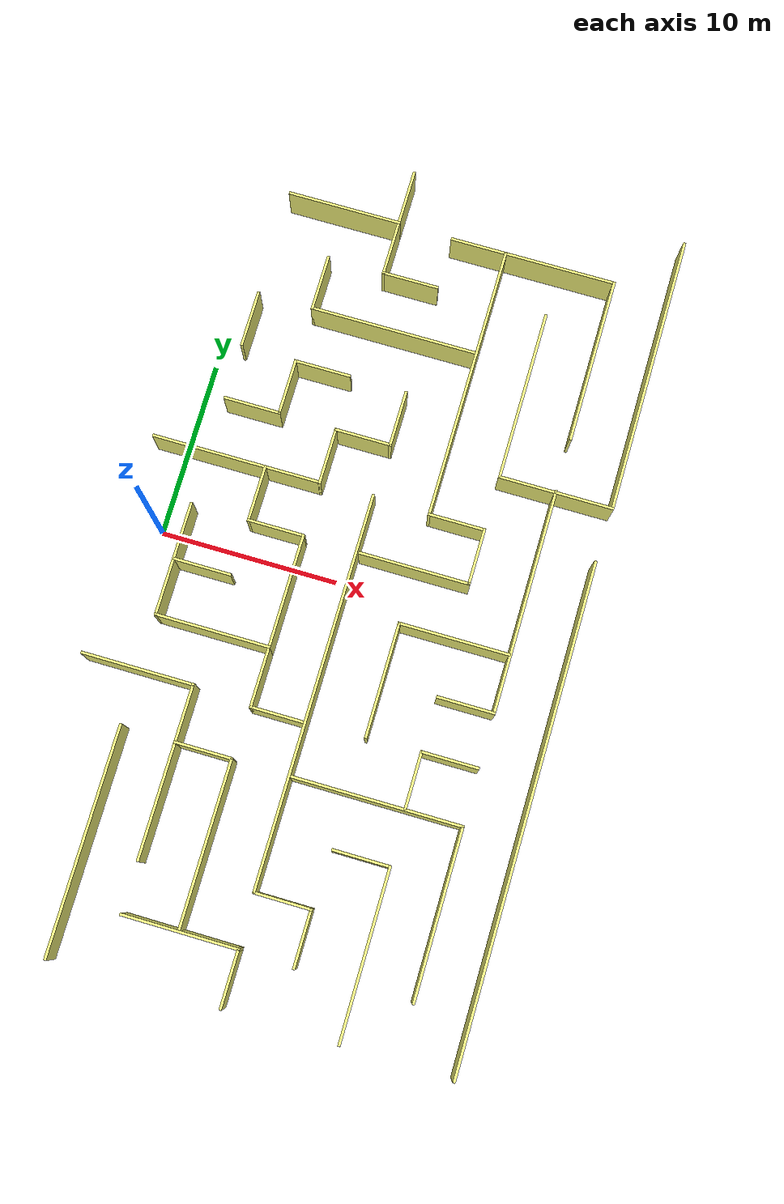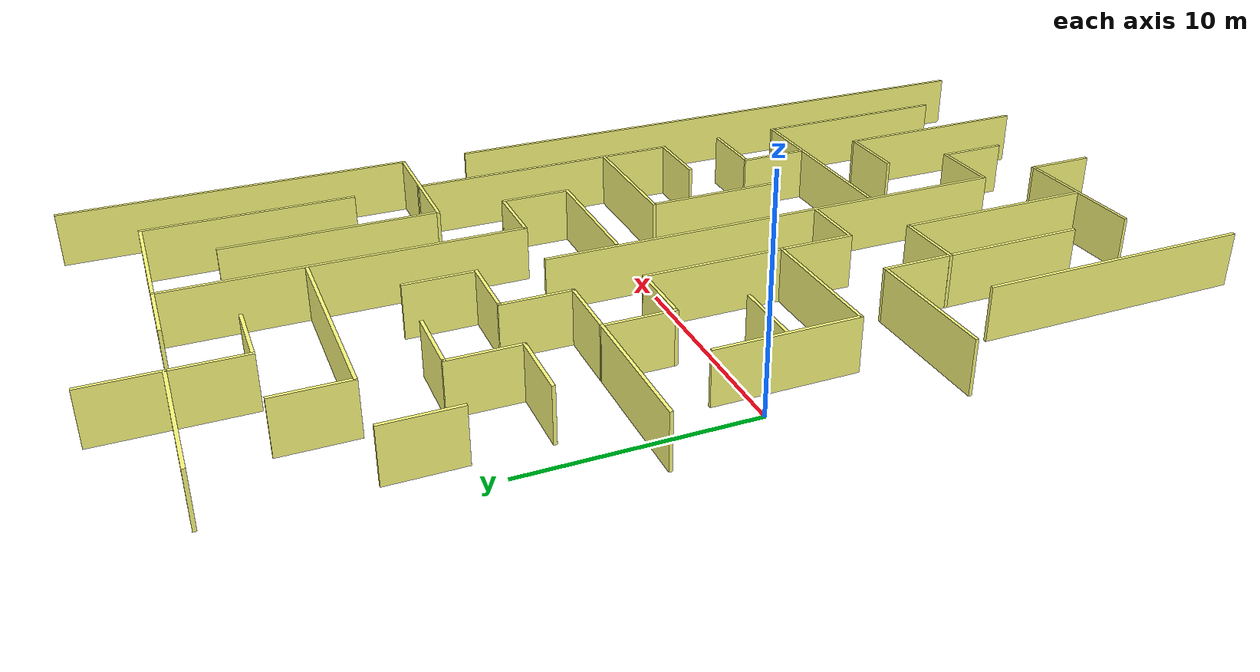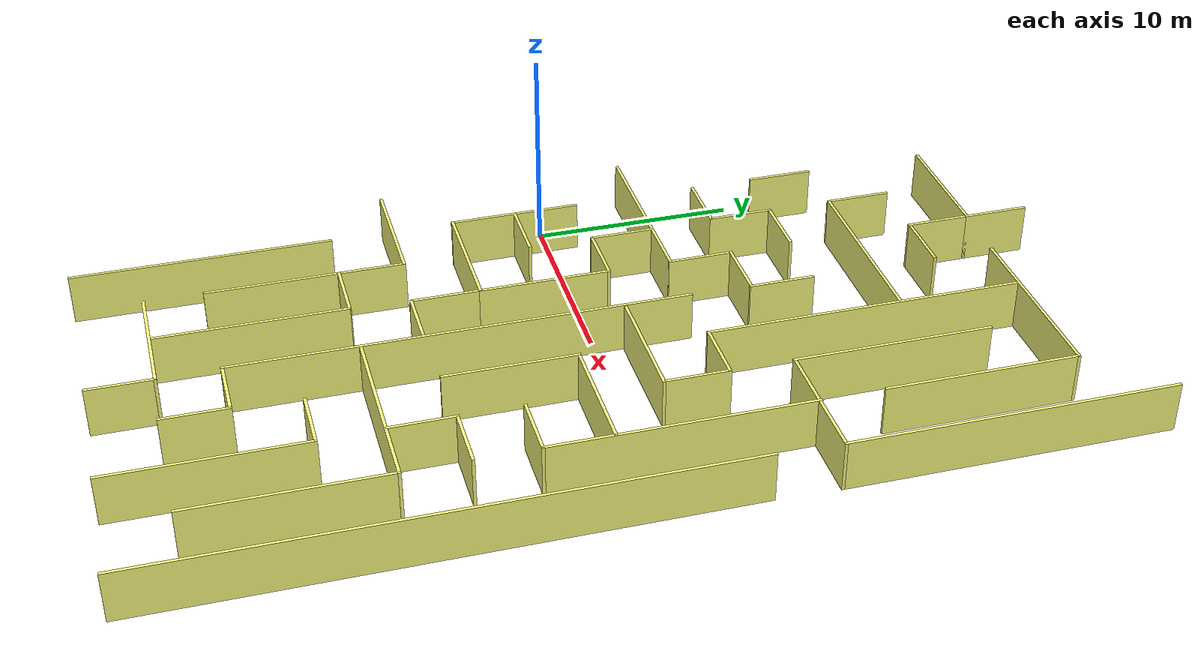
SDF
<sdf version="1.6">
 <world name="default">
  <model name="Maze3">
   <pose>-0.233521 -0.994132 0 0 -0 0</pose>
   <link name="Wall_11">
    <collision name="Wall_11_Collision">
     <geometry><box><size>16 0.15 2.5</size></box></geometry>
     <pose>0 0 1.25 0 -0 0</pose>
    </collision>
    <visual name="Wall_11_Visual">
     <pose>0 0 1.25 0 -0 0</pose>
     <geometry><box><size>16 0.15 2.5</size></box></geometry>
     <material>
      <script><uri>file://media/materials/scripts/gazebo.material</uri><name>Gazebo/Grey</name></script>
      <ambient>1 1 0.5 1</ambient>
     </material>
     <meta><layer>1</layer></meta>
    </visual>
    <pose>23.686 16.5704 0.001 0 -0 -1.5708</pose>
   </link>
   <link name="Wall_119">
    <collision name="Wall_119_Collision">
     <geometry><box><size>6.33818 0.15 2.5</size></box></geometry>
     <pose>0 0 1.25 0 -0 0</pose>
    </collision>
    <visual name="Wall_119_Visual">
     <pose>0 0 1.25 0 -0 0</pose>
     <geometry><box><size>6.33818 0.15 2.5</size></box></geometry>
     <material>
      <script><uri>file://media/materials/scripts/gazebo.material</uri><name>Gazebo/Grey</name></script>
      <ambient>1 1 0.5 1</ambient>
     </material>
     <meta><layer>1</layer></meta>
    </visual>
    <pose>1.63703 -6.89503 0.001 0 -0 0</pose>
   </link>
   <link name="Wall_12">
    <collision name="Wall_12_Collision">
     <geometry><box><size>6.5 0.15 2.5</size></box></geometry>
     <pose>0 0 1.25 0 -0 0</pose>
    </collision>
    <visual name="Wall_12_Visual">
     <pose>0 0 1.25 0 -0 0</pose>
     <geometry><box><size>6.5 0.15 2.5</size></box></geometry>
     <material>
      <script><uri>file://media/materials/scripts/gazebo.material</uri><name>Gazebo/Grey</name></script>
      <ambient>1 1 0.5 1</ambient>
     </material>
     <meta><layer>1</layer></meta>
    </visual>
    <pose>20.511 8.64537 0.001 0 -0 3.14159</pose>
   </link>
   <link name="Wall_120">
    <collision name="Wall_120_Collision">
     <geometry><box><size>9.75 0.15 2.5</size></box></geometry>
     <pose>0 0 1.25 0 -0 0</pose>
    </collision>
    <visual name="Wall_120_Visual">
     <pose>0 0 1.25 0 -0 0</pose>
     <geometry><box><size>9.75 0.15 2.5</size></box></geometry>
     <material>
      <script><uri>file://media/materials/scripts/gazebo.material</uri><name>Gazebo/Grey</name></script>
      <ambient>1 1 0.5 1</ambient>
     </material>
     <meta><layer>1</layer></meta>
    </visual>
    <pose>4.73112 -11.695 0.001 0 -0 -1.5708</pose>
   </link>
   <link name="Wall_13">
    <collision name="Wall_13_Collision">
     <geometry><box><size>9.75 0.15 2.5</size></box></geometry>
     <pose>0 0 1.25 0 -0 0</pose>
    </collision>
    <visual name="Wall_13_Visual">
     <pose>0 0 1.25 0 -0 0</pose>
     <geometry><box><size>9.75 0.15 2.5</size></box></geometry>
     <material>
      <script><uri>file://media/materials/scripts/gazebo.material</uri><name>Gazebo/Grey</name></script>
      <ambient>1 1 0.5 1</ambient>
     </material>
     <meta><layer>1</layer></meta>
    </visual>
    <pose>17.336 13.4454 0.001 0 -0 1.5708</pose>
   </link>
   <link name="Wall_131">
    <collision name="Wall_131_Collision">
     <geometry><box><size>12.75 0.15 2.5</size></box></geometry>
     <pose>0 0 1.25 0 -0 0</pose>
    </collision>
    <visual name="Wall_131_Visual">
     <pose>0 0 1.25 0 -0 0</pose>
     <geometry><box><size>12.75 0.15 2.5</size></box></geometry>
     <material>
      <script><uri>file://media/materials/scripts/gazebo.material</uri><name>Gazebo/Grey</name></script>
      <ambient>1 1 0.5 1</ambient>
     </material>
     <meta><layer>1</layer></meta>
    </visual>
    <pose>1.6821 -16.3109 0.001 0 -0 1.5708</pose>
   </link>
   <link name="Wall_143">
    <collision name="Wall_143_Collision">
     <geometry><box><size>6.5 0.15 2.5</size></box></geometry>
     <pose>0 0 1.25 0 -0 0</pose>
    </collision>
    <visual name="Wall_143_Visual">
     <pose>0 0 1.25 0 -0 0</pose>
     <geometry><box><size>6.5 0.15 2.5</size></box></geometry>
     <material>
      <script><uri>file://media/materials/scripts/gazebo.material</uri><name>Gazebo/Grey</name></script>
      <ambient>1 1 0.5 1</ambient>
     </material>
     <meta><layer>1</layer></meta>
    </visual>
    <pose>1.66366 -0.653784 0.001 0 -0 -1.5708</pose>
   </link>
   <link name="Wall_144">
    <collision name="Wall_144_Collision">
     <geometry><box><size>6.5 0.15 2.5</size></box></geometry>
     <pose>0 0 1.25 0 -0 0</pose>
    </collision>
    <visual name="Wall_144_Visual">
     <pose>0 0 1.25 0 -0 0</pose>
     <geometry><box><size>6.5 0.15 2.5</size></box></geometry>
     <material>
      <script><uri>file://media/materials/scripts/gazebo.material</uri><name>Gazebo/Grey</name></script>
      <ambient>1 1 0.5 1</ambient>
     </material>
     <meta><layer>1</layer></meta>
    </visual>
    <pose>4.83866 -3.82878 0.001 0 -0 0</pose>
   </link>
   <link name="Wall_145">
    <collision name="Wall_145_Collision">
     <geometry><box><size>6.5 0.15 2.5</size></box></geometry>
     <pose>0 0 1.25 0 -0 0</pose>
    </collision>
    <visual name="Wall_145_Visual">
     <pose>0 0 1.25 0 -0 0</pose>
     <geometry><box><size>6.5 0.15 2.5</size></box></geometry>
     <material>
      <script><uri>file://media/materials/scripts/gazebo.material</uri><name>Gazebo/Grey</name></script>
      <ambient>1 1 0.5 1</ambient>
     </material>
     <meta><layer>1</layer></meta>
    </visual>
    <pose>8.01366 -0.653784 0.001 0 -0 1.5708</pose>
   </link>
   <link name="Wall_146">
    <collision name="Wall_146_Collision">
     <geometry><box><size>3.25 0.15 2.5</size></box></geometry>
     <pose>0 0 1.25 0 -0 0</pose>
    </collision>
    <visual name="Wall_146_Visual">
     <pose>0 0 1.25 0 -0 0</pose>
     <geometry><box><size>3.25 0.15 2.5</size></box></geometry>
     <material>
      <script><uri>file://media/materials/scripts/gazebo.material</uri><name>Gazebo/Grey</name></script>
      <ambient>1 1 0.5 1</ambient>
     </material>
     <meta><layer>1</layer></meta>
    </visual>
    <pose>6.46366 2.52122 0.001 0 -0 3.14159</pose>
   </link>
   <link name="Wall_147">
    <collision name="Wall_147_Collision">
     <geometry><box><size>3.25 0.15 2.5</size></box></geometry>
     <pose>0 0 1.25 0 -0 0</pose>
    </collision>
    <visual name="Wall_147_Visual">
     <pose>0 0 1.25 0 -0 0</pose>
     <geometry><box><size>3.25 0.15 2.5</size></box></geometry>
     <material>
      <script><uri>file://media/materials/scripts/gazebo.material</uri><name>Gazebo/Grey</name></script>
      <ambient>1 1 0.5 1</ambient>
     </material>
     <meta><layer>1</layer></meta>
    </visual>
    <pose>4.91366 4.07122 0.001 0 -0 1.5708</pose>
   </link>
   <link name="Wall_148">
    <collision name="Wall_148_Collision">
     <geometry><box><size>6.5 0.15 2.5</size></box></geometry>
     <pose>0 0 1.25 0 -0 0</pose>
    </collision>
    <visual name="Wall_148_Visual">
     <pose>0 0 1.25 0 -0 0</pose>
     <geometry><box><size>6.5 0.15 2.5</size></box></geometry>
     <material>
      <script><uri>file://media/materials/scripts/gazebo.material</uri><name>Gazebo/Grey</name></script>
      <ambient>1 1 0.5 1</ambient>
     </material>
     <meta><layer>1</layer></meta>
    </visual>
    <pose>1.73866 5.62122 0.001 0 -0 3.14159</pose>
   </link>
   <link name="Wall_15">
    <collision name="Wall_15_Collision">
     <geometry><box><size>9.5 0.15 2.5</size></box></geometry>
     <pose>0 0 1.25 0 -0 0</pose>
    </collision>
    <visual name="Wall_15_Visual">
     <pose>0 0 1.25 0 -0 0</pose>
     <geometry><box><size>9.5 0.15 2.5</size></box></geometry>
     <material>
      <script><uri>file://media/materials/scripts/gazebo.material</uri><name>Gazebo/Grey</name></script>
      <ambient>1 1 0.5 1</ambient>
     </material>
     <meta><layer>1</layer></meta>
    </visual>
    <pose>20.4894 16.4908 0.001 0 -0 1.5708</pose>
   </link>
   <link name="Wall_150">
    <collision name="Wall_150_Collision">
     <geometry><box><size>3.25 0.15 2.5</size></box></geometry>
     <pose>0 0 1.25 0 -0 0</pose>
    </collision>
    <visual name="Wall_150_Visual">
     <pose>0 0 1.25 0 -0 0</pose>
     <geometry><box><size>3.25 0.15 2.5</size></box></geometry>
     <material>
      <script><uri>file://media/materials/scripts/gazebo.material</uri><name>Gazebo/Grey</name></script>
      <ambient>1 1 0.5 1</ambient>
     </material>
     <meta><layer>1</layer></meta>
    </visual>
    <pose>6.46366 5.62122 0.001 0 -0 0</pose>
   </link>
   <link name="Wall_151">
    <collision name="Wall_151_Collision">
     <geometry><box><size>3.25 0.15 2.5</size></box></geometry>
     <pose>0 0 1.25 0 -0 0</pose>
    </collision>
    <visual name="Wall_151_Visual">
     <pose>0 0 1.25 0 -0 0</pose>
     <geometry><box><size>3.25 0.15 2.5</size></box></geometry>
     <material>
      <script><uri>file://media/materials/scripts/gazebo.material</uri><name>Gazebo/Grey</name></script>
      <ambient>1 1 0.5 1</ambient>
     </material>
     <meta><layer>1</layer></meta>
    </visual>
    <pose>8.01366 7.17122 0.001 0 -0 1.5708</pose>
   </link>
   <link name="Wall_152">
    <collision name="Wall_152_Collision">
     <geometry><box><size>3.25 0.15 2.5</size></box></geometry>
     <pose>0 0 1.25 0 -0 0</pose>
    </collision>
    <visual name="Wall_152_Visual">
     <pose>0 0 1.25 0 -0 0</pose>
     <geometry><box><size>3.25 0.15 2.5</size></box></geometry>
     <material>
      <script><uri>file://media/materials/scripts/gazebo.material</uri><name>Gazebo/Grey</name></script>
      <ambient>1 1 0.5 1</ambient>
     </material>
     <meta><layer>1</layer></meta>
    </visual>
    <pose>9.56366 8.72122 0.001 0 -0 0</pose>
   </link>
   <link name="Wall_153">
    <collision name="Wall_153_Collision">
     <geometry><box><size>3.25 0.15 2.5</size></box></geometry>
     <pose>0 0 1.25 0 -0 0</pose>
    </collision>
    <visual name="Wall_153_Visual">
     <pose>0 0 1.25 0 -0 0</pose>
     <geometry><box><size>3.25 0.15 2.5</size></box></geometry>
     <material>
      <script><uri>file://media/materials/scripts/gazebo.material</uri><name>Gazebo/Grey</name></script>
      <ambient>1 1 0.5 1</ambient>
     </material>
     <meta><layer>1</layer></meta>
    </visual>
    <pose>11.1137 10.2712 0.001 0 -0 1.5708</pose>
   </link>
   <link name="Wall_157">
    <collision name="Wall_157_Collision">
     <geometry><box><size>3.25 0.15 2.5</size></box></geometry>
     <pose>0 0 1.25 0 -0 0</pose>
    </collision>
    <visual name="Wall_157_Visual">
     <pose>0 0 1.25 0 -0 0</pose>
     <geometry><box><size>3.25 0.15 2.5</size></box></geometry>
     <material>
      <script><uri>file://media/materials/scripts/gazebo.material</uri><name>Gazebo/Grey</name></script>
      <ambient>1 1 0.5 1</ambient>
     </material>
     <meta><layer>1</layer></meta>
    </visual>
    <pose>3.21366 8.76629 0.001 0 -0 0</pose>
   </link>
   <link name="Wall_158">
    <collision name="Wall_158_Collision">
     <geometry><box><size>3.25 0.15 2.5</size></box></geometry>
     <pose>0 0 1.25 0 -0 0</pose>
    </collision>
    <visual name="Wall_158_Visual">
     <pose>0 0 1.25 0 -0 0</pose>
     <geometry><box><size>3.25 0.15 2.5</size></box></geometry>
     <material>
      <script><uri>file://media/materials/scripts/gazebo.material</uri><name>Gazebo/Grey</name></script>
      <ambient>1 1 0.5 1</ambient>
     </material>
     <meta><layer>1</layer></meta>
    </visual>
    <pose>4.76366 10.3163 0.001 0 -0 1.5708</pose>
   </link>
   <link name="Wall_159">
    <collision name="Wall_159_Collision">
     <geometry><box><size>3.25 0.15 2.5</size></box></geometry>
     <pose>0 0 1.25 0 -0 0</pose>
    </collision>
    <visual name="Wall_159_Visual">
     <pose>0 0 1.25 0 -0 0</pose>
     <geometry><box><size>3.25 0.15 2.5</size></box></geometry>
     <material>
      <script><uri>file://media/materials/scripts/gazebo.material</uri><name>Gazebo/Grey</name></script>
      <ambient>1 1 0.5 1</ambient>
     </material>
     <meta><layer>1</layer></meta>
    </visual>
    <pose>6.31366 11.8663 0.001 0 -0 0</pose>
   </link>
   <link name="Wall_16">
    <collision name="Wall_16_Collision">
     <geometry><box><size>9.5 0.15 2.5</size></box></geometry>
     <pose>0 0 1.25 0 -0 0</pose>
    </collision>
    <visual name="Wall_16_Visual">
     <pose>0 0 1.25 0 -0 0</pose>
     <geometry><box><size>9.5 0.15 2.5</size></box></geometry>
     <material>
      <script><uri>file://media/materials/scripts/gazebo.material</uri><name>Gazebo/Grey</name></script>
      <ambient>1 1 0.5 1</ambient>
     </material>
     <meta><layer>1</layer></meta>
    </visual>
    <pose>15.8144 21.1658 0.001 0 -0 3.14159</pose>
   </link>
   <link name="Wall_161">
    <collision name="Wall_161_Collision">
     <geometry><box><size>3.25 0.15 2.5</size></box></geometry>
     <pose>0 0 1.25 0 -0 0</pose>
    </collision>
    <visual name="Wall_161_Visual">
     <pose>0 0 1.25 0 -0 0</pose>
     <geometry><box><size>3.25 0.15 2.5</size></box></geometry>
     <material>
      <script><uri>file://media/materials/scripts/gazebo.material</uri><name>Gazebo/Grey</name></script>
      <ambient>1 1 0.5 1</ambient>
     </material>
     <meta><layer>1</layer></meta>
    </visual>
    <pose>1.63586 13.5254 0.001 0 -0 1.5708</pose>
   </link>
   <link name="Wall_165">
    <collision name="Wall_165_Collision">
     <geometry><box><size>3.25 0.15 2.5</size></box></geometry>
     <pose>0 0 1.25 0 -0 0</pose>
    </collision>
    <visual name="Wall_165_Visual">
     <pose>0 0 1.25 0 -0 0</pose>
     <geometry><box><size>3.25 0.15 2.5</size></box></geometry>
     <material>
      <script><uri>file://media/materials/scripts/gazebo.material</uri><name>Gazebo/Grey</name></script>
      <ambient>1 1 0.5 1</ambient>
     </material>
     <meta><layer>1</layer></meta>
    </visual>
    <pose>3.2864 -0.644379 0.001 0 -0 0</pose>
   </link>
   <link name="Wall_167">
    <collision name="Wall_167_Collision">
     <geometry><box><size>3.5 0.15 2.5</size></box></geometry>
     <pose>0 0 1.25 0 -0 0</pose>
    </collision>
    <visual name="Wall_167_Visual">
     <pose>0 0 1.25 0 -0 0</pose>
     <geometry><box><size>3.5 0.15 2.5</size></box></geometry>
     <material>
      <script><uri>file://media/materials/scripts/gazebo.material</uri><name>Gazebo/Grey</name></script>
      <ambient>1 1 0.5 1</ambient>
     </material>
     <meta><layer>1</layer></meta>
    </visual>
    <pose>8.01366 -5.50378 0.001 0 -0 -1.5708</pose>
   </link>
   <link name="Wall_168">
    <collision name="Wall_168_Collision">
     <geometry><box><size>3 0.15 2.5</size></box></geometry>
     <pose>0 0 1.25 0 -0 0</pose>
    </collision>
    <visual name="Wall_168_Visual">
     <pose>0 0 1.25 0 -0 0</pose>
     <geometry><box><size>3 0.15 2.5</size></box></geometry>
     <material>
      <script><uri>file://media/materials/scripts/gazebo.material</uri><name>Gazebo/Grey</name></script>
      <ambient>1 1 0.5 1</ambient>
     </material>
     <meta><layer>1</layer></meta>
    </visual>
    <pose>9.43866 -7.17878 0.001 0 -0 0</pose>
   </link>
   <link name="Wall_170">
    <collision name="Wall_170_Collision">
     <geometry><box><size>3.25 0.15 2.5</size></box></geometry>
     <pose>0 0 1.25 0 -0 0</pose>
    </collision>
    <visual name="Wall_170_Visual">
     <pose>0 0 1.25 0 -0 0</pose>
     <geometry><box><size>3.25 0.15 2.5</size></box></geometry>
     <material>
      <script><uri>file://media/materials/scripts/gazebo.material</uri><name>Gazebo/Grey</name></script>
      <ambient>1 1 0.5 1</ambient>
     </material>
     <meta><layer>1</layer></meta>
    </visual>
    <pose>6.27338 -10.0795 0.001 0 -0 0</pose>
   </link>
   <link name="Wall_172">
    <collision name="Wall_172_Collision">
     <geometry><box><size>9.25 0.15 2.5</size></box></geometry>
     <pose>0 0 1.25 0 -0 0</pose>
    </collision>
    <visual name="Wall_172_Visual">
     <pose>0 0 1.25 0 -0 0</pose>
     <geometry><box><size>9.25 0.15 2.5</size></box></geometry>
     <material>
      <script><uri>file://media/materials/scripts/gazebo.material</uri><name>Gazebo/Grey</name></script>
      <ambient>1 1 0.5 1</ambient>
     </material>
     <meta><layer>1</layer></meta>
    </visual>
    <pose>7.85976 -14.6816 0.001 0 -0 1.5708</pose>
   </link>
   <link name="Wall_177">
    <collision name="Wall_177_Collision">
     <geometry><box><size>6.5 0.15 2.5</size></box></geometry>
     <pose>0 0 1.25 0 -0 0</pose>
    </collision>
    <visual name="Wall_177_Visual">
     <pose>0 0 1.25 0 -0 0</pose>
     <geometry><box><size>6.5 0.15 2.5</size></box></geometry>
     <material>
      <script><uri>file://media/materials/scripts/gazebo.material</uri><name>Gazebo/Grey</name></script>
      <ambient>1 1 0.5 1</ambient>
     </material>
     <meta><layer>1</layer></meta>
    </visual>
    <pose>4.81226 21.2679 0.001 0 -0 0</pose>
   </link>
   <link name="Wall_178">
    <collision name="Wall_178_Collision">
     <geometry><box><size>3.25 0.15 2.5</size></box></geometry>
     <pose>0 0 1.25 0 -0 0</pose>
    </collision>
    <visual name="Wall_178_Visual">
     <pose>0 0 1.25 0 -0 0</pose>
     <geometry><box><size>3.25 0.15 2.5</size></box></geometry>
     <material>
      <script><uri>file://media/materials/scripts/gazebo.material</uri><name>Gazebo/Grey</name></script>
      <ambient>1 1 0.5 1</ambient>
     </material>
     <meta><layer>1</layer></meta>
    </visual>
    <pose>7.98726 22.8179 0.001 0 -0 1.5708</pose>
   </link>
   <link name="Wall_18">
    <collision name="Wall_18_Collision">
     <geometry><box><size>15.75 0.15 2.5</size></box></geometry>
     <pose>0 0 1.25 0 -0 0</pose>
    </collision>
    <visual name="Wall_18_Visual">
     <pose>0 0 1.25 0 -0 0</pose>
     <geometry><box><size>15.75 0.15 2.5</size></box></geometry>
     <material>
      <script><uri>file://media/materials/scripts/gazebo.material</uri><name>Gazebo/Grey</name></script>
      <ambient>1 1 0.5 1</ambient>
     </material>
     <meta><layer>1</layer></meta>
    </visual>
    <pose>14.2274 13.3557 0.001 0 -0 -1.5708</pose>
   </link>
   <link name="Wall_180">
    <collision name="Wall_180_Collision">
     <geometry><box><size>3.25 0.15 2.5</size></box></geometry>
     <pose>0 0 1.25 0 -0 0</pose>
    </collision>
    <visual name="Wall_180_Visual">
     <pose>0 0 1.25 0 -0 0</pose>
     <geometry><box><size>3.25 0.15 2.5</size></box></geometry>
     <material>
      <script><uri>file://media/materials/scripts/gazebo.material</uri><name>Gazebo/Grey</name></script>
      <ambient>1 1 0.5 1</ambient>
     </material>
     <meta><layer>1</layer></meta>
    </visual>
    <pose>7.98726 19.7179 0.001 0 -0 -1.5708</pose>
   </link>
   <link name="Wall_181">
    <collision name="Wall_181_Collision">
     <geometry><box><size>3.25 0.15 2.5</size></box></geometry>
     <pose>0 0 1.25 0 -0 0</pose>
    </collision>
    <visual name="Wall_181_Visual">
     <pose>0 0 1.25 0 -0 0</pose>
     <geometry><box><size>3.25 0.15 2.5</size></box></geometry>
     <material>
      <script><uri>file://media/materials/scripts/gazebo.material</uri><name>Gazebo/Grey</name></script>
      <ambient>1 1 0.5 1</ambient>
     </material>
     <meta><layer>1</layer></meta>
    </visual>
    <pose>9.53726 18.1679 0.001 0 -0 0</pose>
   </link>
   <link name="Wall_19">
    <collision name="Wall_19_Collision">
     <geometry><box><size>3.25 0.15 2.5</size></box></geometry>
     <pose>0 0 1.25 0 -0 0</pose>
    </collision>
    <visual name="Wall_19_Visual">
     <pose>0 0 1.25 0 -0 0</pose>
     <geometry><box><size>3.25 0.15 2.5</size></box></geometry>
     <material>
      <script><uri>file://media/materials/scripts/gazebo.material</uri><name>Gazebo/Grey</name></script>
      <ambient>1 1 0.5 1</ambient>
     </material>
     <meta><layer>1</layer></meta>
    </visual>
    <pose>15.7774 5.55574 0.001 0 -0 0</pose>
   </link>
   <link name="Wall_20">
    <collision name="Wall_20_Collision">
     <geometry><box><size>3.25 0.15 2.5</size></box></geometry>
     <pose>0 0 1.25 0 -0 0</pose>
    </collision>
    <visual name="Wall_20_Visual">
     <pose>0 0 1.25 0 -0 0</pose>
     <geometry><box><size>3.25 0.15 2.5</size></box></geometry>
     <material>
      <script><uri>file://media/materials/scripts/gazebo.material</uri><name>Gazebo/Grey</name></script>
      <ambient>1 1 0.5 1</ambient>
     </material>
     <meta><layer>1</layer></meta>
    </visual>
    <pose>17.3274 4.00574 0.001 0 -0 -1.5708</pose>
   </link>
   <link name="Wall_21">
    <collision name="Wall_21_Collision">
     <geometry><box><size>6.25 0.15 2.5</size></box></geometry>
     <pose>0 0 1.25 0 -0 0</pose>
    </collision>
    <visual name="Wall_21_Visual">
     <pose>0 0 1.25 0 -0 0</pose>
     <geometry><box><size>6.25 0.15 2.5</size></box></geometry>
     <material>
      <script><uri>file://media/materials/scripts/gazebo.material</uri><name>Gazebo/Grey</name></script>
      <ambient>1 1 0.5 1</ambient>
     </material>
     <meta><layer>1</layer></meta>
    </visual>
    <pose>14.2774 2.45574 0.001 0 -0 3.14159</pose>
   </link>
   <link name="Wall_23">
    <collision name="Wall_23_Collision">
     <geometry><box><size>12.75 0.15 2.5</size></box></geometry>
     <pose>0 0 1.25 0 -0 0</pose>
    </collision>
    <visual name="Wall_23_Visual">
     <pose>0 0 1.25 0 -0 0</pose>
     <geometry><box><size>12.75 0.15 2.5</size></box></geometry>
     <material>
      <script><uri>file://media/materials/scripts/gazebo.material</uri><name>Gazebo/Grey</name></script>
      <ambient>1 1 0.5 1</ambient>
     </material>
     <meta><layer>1</layer></meta>
    </visual>
    <pose>20.4935 2.3978 0.001 0 -0 -1.5708</pose>
   </link>
   <link name="Wall_24">
    <collision name="Wall_24_Collision">
     <geometry><box><size>3.25 0.15 2.5</size></box></geometry>
     <pose>0 0 1.25 0 -0 0</pose>
    </collision>
    <visual name="Wall_24_Visual">
     <pose>0 0 1.25 0 -0 0</pose>
     <geometry><box><size>3.25 0.15 2.5</size></box></geometry>
     <material>
      <script><uri>file://media/materials/scripts/gazebo.material</uri><name>Gazebo/Grey</name></script>
      <ambient>1 1 0.5 1</ambient>
     </material>
     <meta><layer>1</layer></meta>
    </visual>
    <pose>18.9435 -3.9022 0.001 0 -0 3.14159</pose>
   </link>
   <link name="Wall_27">
    <collision name="Wall_27_Collision">
     <geometry><box><size>6.25 0.15 2.5</size></box></geometry>
     <pose>0 0 1.25 0 -0 0</pose>
    </collision>
    <visual name="Wall_27_Visual">
     <pose>0 0 1.25 0 -0 0</pose>
     <geometry><box><size>6.25 0.15 2.5</size></box></geometry>
     <material>
      <script><uri>file://media/materials/scripts/gazebo.material</uri><name>Gazebo/Grey</name></script>
      <ambient>1 1 0.5 1</ambient>
     </material>
     <meta><layer>1</layer></meta>
    </visual>
    <pose>17.3753 -0.658048 0.001 0 -0 3.14159</pose>
   </link>
   <link name="Wall_28">
    <collision name="Wall_28_Collision">
     <geometry><box><size>6.5 0.15 2.5</size></box></geometry>
     <pose>0 0 1.25 0 -0 0</pose>
    </collision>
    <visual name="Wall_28_Visual">
     <pose>0 0 1.25 0 -0 0</pose>
     <geometry><box><size>6.5 0.15 2.5</size></box></geometry>
     <material>
      <script><uri>file://media/materials/scripts/gazebo.material</uri><name>Gazebo/Grey</name></script>
      <ambient>1 1 0.5 1</ambient>
     </material>
     <meta><layer>1</layer></meta>
    </visual>
    <pose>14.3253 -3.83305 0.001 0 -0 -1.5708</pose>
   </link>
   <link name="Wall_36">
    <collision name="Wall_36_Collision">
     <geometry><box><size>28.25 0.15 2.5</size></box></geometry>
     <pose>0 0 1.25 0 -0 0</pose>
    </collision>
    <visual name="Wall_36_Visual">
     <pose>0 0 1.25 0 -0 0</pose>
     <geometry><box><size>28.25 0.15 2.5</size></box></geometry>
     <material>
      <script><uri>file://media/materials/scripts/gazebo.material</uri><name>Gazebo/Grey</name></script>
      <ambient>1 1 0.5 1</ambient>
     </material>
     <meta><layer>1</layer></meta>
    </visual>
    <pose>23.5636 -8.54374 0.001 0 -0 1.5708</pose>
   </link>
   <link name="Wall_40">
    <collision name="Wall_40_Collision">
     <geometry><box><size>3.25 0.15 2.5</size></box></geometry>
     <pose>0 0 1.25 0 -0 0</pose>
    </collision>
    <visual name="Wall_40_Visual">
     <pose>0 0 1.25 0 -0 0</pose>
     <geometry><box><size>3.25 0.15 2.5</size></box></geometry>
     <material>
      <script><uri>file://media/materials/scripts/gazebo.material</uri><name>Gazebo/Grey</name></script>
      <ambient>1 1 0.5 1</ambient>
     </material>
     <meta><layer>1</layer></meta>
    </visual>
    <pose>15.8865 -13.1502 0.001 0 -0 0</pose>
   </link>
   <link name="Wall_41">
    <collision name="Wall_41_Collision">
     <geometry><box><size>9.5 0.15 2.5</size></box></geometry>
     <pose>0 0 1.25 0 -0 0</pose>
    </collision>
    <visual name="Wall_41_Visual">
     <pose>0 0 1.25 0 -0 0</pose>
     <geometry><box><size>9.5 0.15 2.5</size></box></geometry>
     <material>
      <script><uri>file://media/materials/scripts/gazebo.material</uri><name>Gazebo/Grey</name></script>
      <ambient>1 1 0.5 1</ambient>
     </material>
     <meta><layer>1</layer></meta>
    </visual>
    <pose>17.4365 -17.8252 0.001 0 -0 -1.5708</pose>
   </link>
   <link name="Wall_43">
    <collision name="Wall_43_Collision">
     <geometry><box><size>9.5 0.15 2.5</size></box></geometry>
     <pose>0 0 1.25 0 -0 0</pose>
    </collision>
    <visual name="Wall_43_Visual">
     <pose>0 0 1.25 0 -0 0</pose>
     <geometry><box><size>9.5 0.15 2.5</size></box></geometry>
     <material>
      <script><uri>file://media/materials/scripts/gazebo.material</uri><name>Gazebo/Grey</name></script>
      <ambient>1 1 0.5 1</ambient>
     </material>
     <meta><layer>1</layer></meta>
    </visual>
    <pose>20.5149 -14.7763 0.001 0 -0 1.5708</pose>
   </link>
   <link name="Wall_44">
    <collision name="Wall_44_Collision">
     <geometry><box><size>9.5 0.15 2.5</size></box></geometry>
     <pose>0 0 1.25 0 -0 0</pose>
    </collision>
    <visual name="Wall_44_Visual">
     <pose>0 0 1.25 0 -0 0</pose>
     <geometry><box><size>9.5 0.15 2.5</size></box></geometry>
     <material>
      <script><uri>file://media/materials/scripts/gazebo.material</uri><name>Gazebo/Grey</name></script>
      <ambient>1 1 0.5 1</ambient>
     </material>
     <meta><layer>1</layer></meta>
    </visual>
    <pose>15.8399 -10.1013 0.001 0 -0 3.14159</pose>
   </link>
   <link name="Wall_46">
    <collision name="Wall_46_Collision">
     <geometry><box><size>3.25 0.15 2.5</size></box></geometry>
     <pose>0 0 1.25 0 -0 0</pose>
    </collision>
    <visual name="Wall_46_Visual">
     <pose>0 0 1.25 0 -0 0</pose>
     <geometry><box><size>3.25 0.15 2.5</size></box></geometry>
     <material>
      <script><uri>file://media/materials/scripts/gazebo.material</uri><name>Gazebo/Grey</name></script>
      <ambient>1 1 0.5 1</ambient>
     </material>
     <meta><layer>1</layer></meta>
    </visual>
    <pose>17.3643 -8.49052 0.001 0 -0 1.5708</pose>
   </link>
   <link name="Wall_47">
    <collision name="Wall_47_Collision">
     <geometry><box><size>3.25 0.15 2.5</size></box></geometry>
     <pose>0 0 1.25 0 -0 0</pose>
    </collision>
    <visual name="Wall_47_Visual">
     <pose>0 0 1.25 0 -0 0</pose>
     <geometry><box><size>3.25 0.15 2.5</size></box></geometry>
     <material>
      <script><uri>file://media/materials/scripts/gazebo.material</uri><name>Gazebo/Grey</name></script>
      <ambient>1 1 0.5 1</ambient>
     </material>
     <meta><layer>1</layer></meta>
    </visual>
    <pose>18.9143 -6.94052 0.001 0 -0 0</pose>
   </link>
   <link name="Wall_49">
    <collision name="Wall_49_Collision">
     <geometry><box><size>22.25 0.15 2.5</size></box></geometry>
     <pose>0 0 1.25 0 -0 0</pose>
    </collision>
    <visual name="Wall_49_Visual">
     <pose>0 0 1.25 0 -0 0</pose>
     <geometry><box><size>22.25 0.15 2.5</size></box></geometry>
     <material>
      <script><uri>file://media/materials/scripts/gazebo.material</uri><name>Gazebo/Grey</name></script>
      <ambient>1 1 0.5 1</ambient>
     </material>
     <meta><layer>1</layer></meta>
    </visual>
    <pose>11.0159 -5.34255 0.001 0 -0 -1.5708</pose>
   </link>
   <link name="Wall_50">
    <collision name="Wall_50_Collision">
     <geometry><box><size>3.25 0.15 2.5</size></box></geometry>
     <pose>0 0 1.25 0 -0 0</pose>
    </collision>
    <visual name="Wall_50_Visual">
     <pose>0 0 1.25 0 -0 0</pose>
     <geometry><box><size>3.25 0.15 2.5</size></box></geometry>
     <material>
      <script><uri>file://media/materials/scripts/gazebo.material</uri><name>Gazebo/Grey</name></script>
      <ambient>1 1 0.5 1</ambient>
     </material>
     <meta><layer>1</layer></meta>
    </visual>
    <pose>12.5659 -16.3925 0.001 0 -0 0</pose>
   </link>
   <link name="Wall_51">
    <collision name="Wall_51_Collision">
     <geometry><box><size>3.25 0.15 2.5</size></box></geometry>
     <pose>0 0 1.25 0 -0 0</pose>
    </collision>
    <visual name="Wall_51_Visual">
     <pose>0 0 1.25 0 -0 0</pose>
     <geometry><box><size>3.25 0.15 2.5</size></box></geometry>
     <material>
      <script><uri>file://media/materials/scripts/gazebo.material</uri><name>Gazebo/Grey</name></script>
      <ambient>1 1 0.5 1</ambient>
     </material>
     <meta><layer>1</layer></meta>
    </visual>
    <pose>14.1159 -17.9425 0.001 0 -0 -1.5708</pose>
   </link>
   <link name="Wall_55">
    <collision name="Wall_55_Collision">
     <geometry><box><size>3.25 0.15 2.5</size></box></geometry>
     <pose>0 0 1.25 0 -0 0</pose>
    </collision>
    <visual name="Wall_55_Visual">
     <pose>0 0 1.25 0 -0 0</pose>
     <geometry><box><size>3.25 0.15 2.5</size></box></geometry>
     <material>
      <script><uri>file://media/materials/scripts/gazebo.material</uri><name>Gazebo/Grey</name></script>
      <ambient>1 1 0.5 1</ambient>
     </material>
     <meta><layer>1</layer></meta>
    </visual>
    <pose>11.0932 -20.9288 0.001 0 -0 1.5708</pose>
   </link>
   <link name="Wall_56">
    <collision name="Wall_56_Collision">
     <geometry><box><size>6.5 0.15 2.5</size></box></geometry>
     <pose>0 0 1.25 0 -0 0</pose>
    </collision>
    <visual name="Wall_56_Visual">
     <pose>0 0 1.25 0 -0 0</pose>
     <geometry><box><size>6.5 0.15 2.5</size></box></geometry>
     <material>
      <script><uri>file://media/materials/scripts/gazebo.material</uri><name>Gazebo/Grey</name></script>
      <ambient>1 1 0.5 1</ambient>
     </material>
     <meta><layer>1</layer></meta>
    </visual>
    <pose>7.91823 -19.3788 0.001 0 -0 3.14159</pose>
   </link>
   <link name="Wall_92">
    <collision name="Wall_92_Collision">
     <geometry><box><size>3.25 0.15 2.5</size></box></geometry>
     <pose>0 0 1.25 0 -0 0</pose>
    </collision>
    <visual name="Wall_92_Visual">
     <pose>0 0 1.25 0 -0 0</pose>
     <geometry><box><size>3.25 0.15 2.5</size></box></geometry>
     <material>
      <script><uri>file://media/materials/scripts/gazebo.material</uri><name>Gazebo/Grey</name></script>
      <ambient>1 1 0.5 1</ambient>
     </material>
     <meta><layer>1</layer></meta>
    </visual>
    <pose>4.77156 16.632 0.001 0 -0 -1.5708</pose>
   </link>
   <link name="Wall_93">
    <collision name="Wall_93_Collision">
     <geometry><box><size>9.5 0.15 2.5</size></box></geometry>
     <pose>0 0 1.25 0 -0 0</pose>
    </collision>
    <visual name="Wall_93_Visual">
     <pose>0 0 1.25 0 -0 0</pose>
     <geometry><box><size>9.5 0.15 2.5</size></box></geometry>
     <material>
      <script><uri>file://media/materials/scripts/gazebo.material</uri><name>Gazebo/Grey</name></script>
      <ambient>1 1 0.5 1</ambient>
     </material>
     <meta><layer>1</layer></meta>
    </visual>
    <pose>9.44656 15.082 0.001 0 -0 0</pose>
   </link>
   <static>1</static>
  </model>
 </world>
</sdf>
